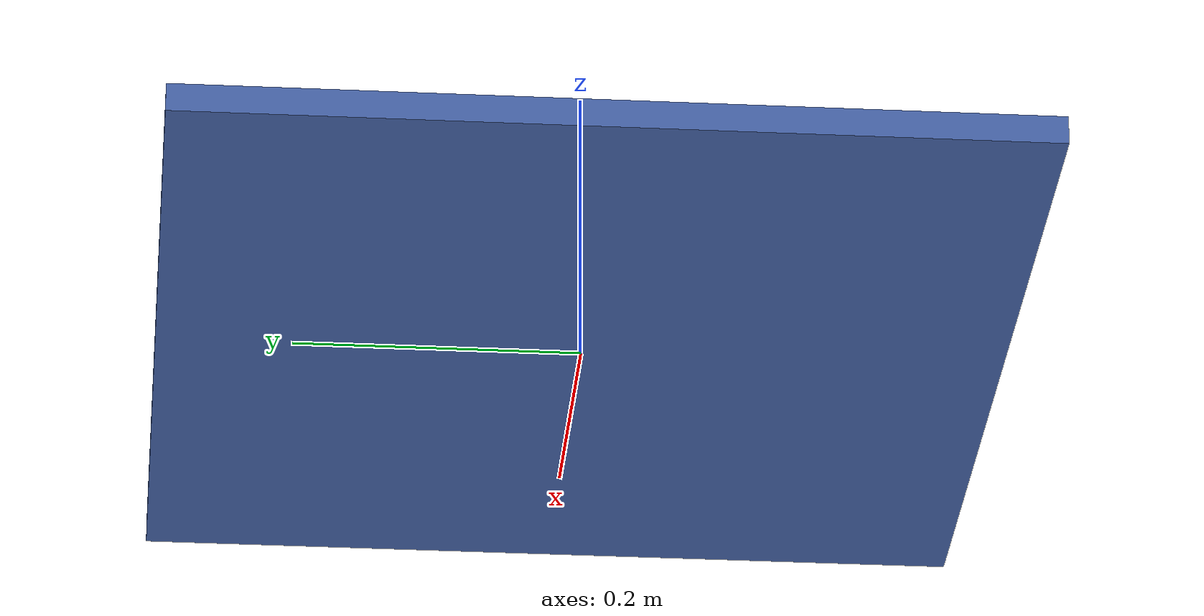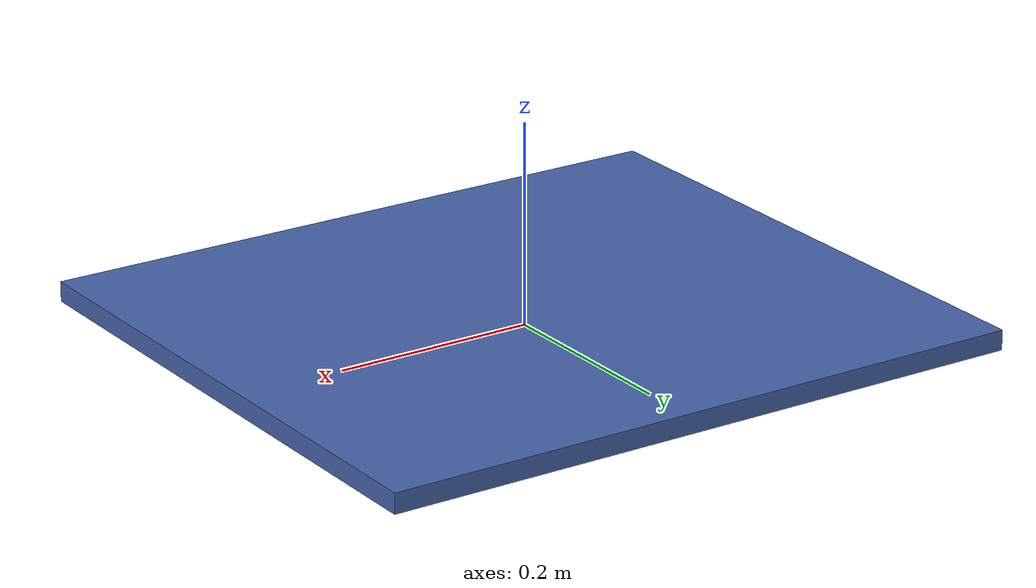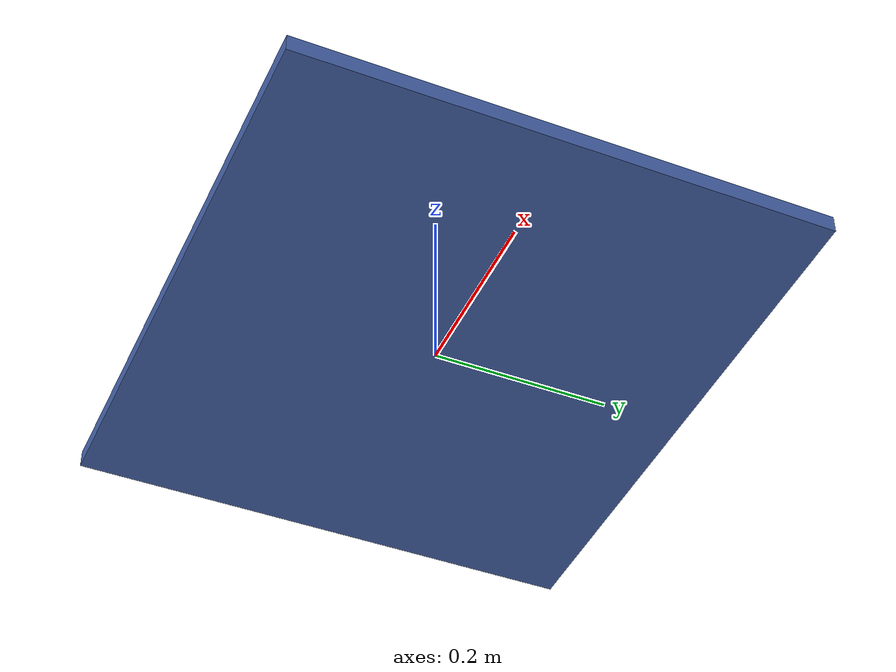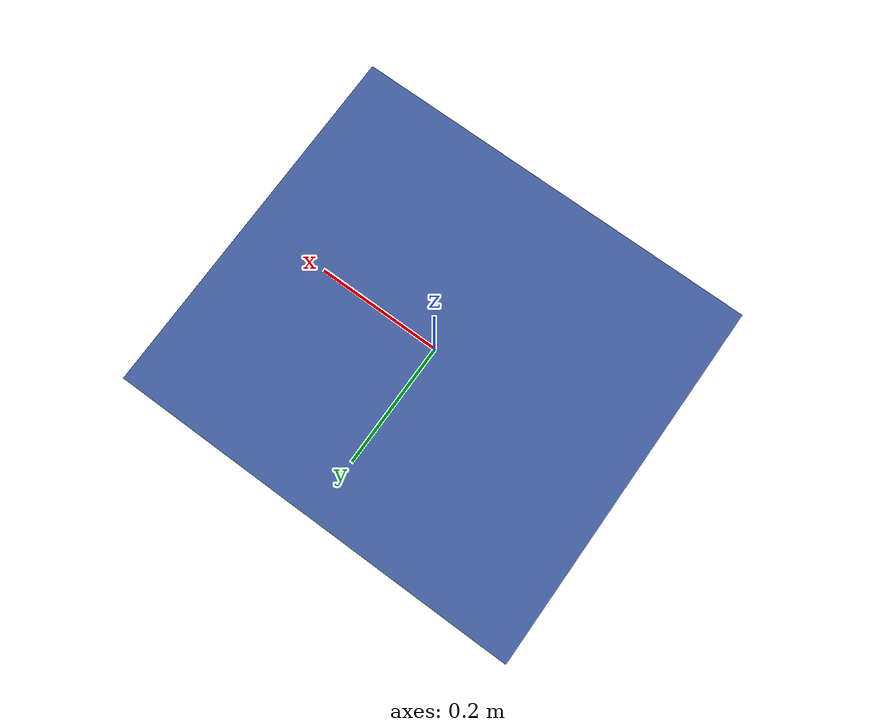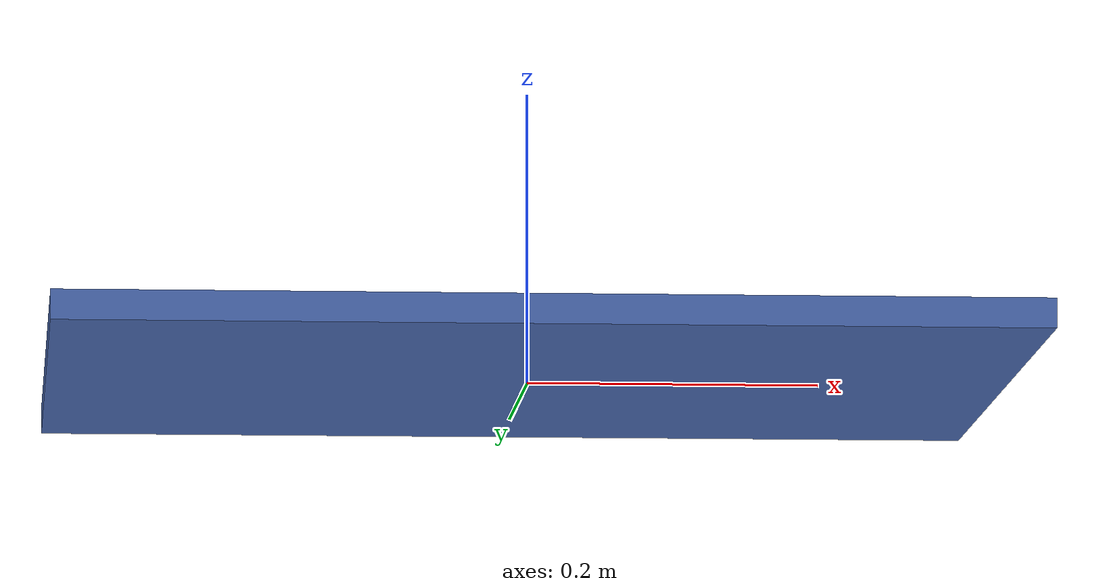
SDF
<?xml version='1.0'?>
<sdf version='1.6'>
  <model name='tabletop'>
    <link name='link'>
      <pose>0.0 0.0 0.01 0 0 0</pose>
      <inertial>
        <!--NOTE: Uses hard wood density (i.e 960 kg/m^3) to calculate the mass
        see https://qtimber.daf.qld.gov.au/guides/wood-density-and-hardness
        -->
        <mass>7.47648</mass>
        <inertia>
          <ixx>0.2162609222</ixx> <!-- for a box: ixx = 0.083 * mass * (y*y + z*z) -->
          <ixy>0</ixy>
          <ixz>0</ixz>
          <iyy>0.2705588582</iyy> <!-- for a box: iyy = 0.083 * mass * (x*x + z*z) -->
          <iyz>0</iyz>
          <izz>0.4863233422</izz> <!-- for a box: izz = 0.083 * mass * (x*x + y*y) -->
        </inertia>
        <pose>0 0 0 0 -0 0</pose>
      </inertial>
      <self_collide>0</self_collide>
      <enable_wind>0</enable_wind>
      <kinematic>0</kinematic>
      <pose>0 0 0 0 -0 0</pose>
      <visual name='visual'>
        <geometry>
          <box>
            <size>0.66 0.59 0.02</size>
          </box>
        </geometry>
        <material>
          <!-- KIT Green RGB: 0 150 130 ->  0 0.588 0.51 1-->
          <!-- KIT Blue RGB: 70 100 170 ->  0.2745 0.3922 0.6667 1-->
          <!-- KIT Grey RGB: 64 64 64 ->  0.251 0.251 0.251 1-->
          <ambient>0.2745 0.3922 0.6667 1</ambient>
          <diffuse>0.2745 0.3922 0.6667 1</diffuse>
          <specular>0 0 0 0</specular>
          <emissive>0 0 0 1</emissive>
        </material>
        <pose>0 0 0 0 -0 0</pose>
        <transparency>0</transparency>
        <cast_shadows>1</cast_shadows>
      </visual>
      <collision name='collision'>
        <laser_retro>0</laser_retro>
        <max_contacts>10</max_contacts>
        <pose>0 0 0 0 -0 0</pose>
        <geometry>
          <box>
            <size>0.66 0.59 0.02</size>
          </box>
        </geometry>
        <surface>
          <!--NOTE: Uses dynamic friction of wood on a brick surface
          see https://www.engineeringtoolbox.com/friction-coefficients-d_778.html
          -->
          <friction>
            <ode>
              <mu>0.6</mu>
              <mu2>0.6</mu2>
              <fdir1>0 0 0</fdir1>
              <slip1>0</slip1>
              <slip2>0</slip2>
            </ode>
            <torsional>
              <coefficient>1</coefficient>
              <patch_radius>0</patch_radius>
              <surface_radius>0</surface_radius>
              <use_patch_radius>1</use_patch_radius>
              <ode>
                <slip>0</slip>
              </ode>
            </torsional>
          </friction>
          <bounce>
            <restitution_coefficient>0</restitution_coefficient>
            <threshold>1e+06</threshold>
          </bounce>
          <contact>
            <collide_without_contact>0</collide_without_contact>
            <collide_without_contact_bitmask>1</collide_without_contact_bitmask>
            <collide_bitmask>1</collide_bitmask>
            <ode>
              <soft_cfm>0</soft_cfm>
              <soft_erp>0.2</soft_erp>
              <kp>1e+13</kp>
              <kd>1</kd>
              <max_vel>0.01</max_vel>
              <min_depth>0</min_depth>
            </ode>
            <bullet>
              <split_impulse>1</split_impulse>
              <split_impulse_penetration_threshold>-0.01</split_impulse_penetration_threshold>
              <soft_cfm>0</soft_cfm>
              <soft_erp>0.2</soft_erp>
              <kp>1e+13</kp>
              <kd>1</kd>
            </bullet>
          </contact>
        </surface>
      </collision>
    </link>
    <static>1</static>
    <allow_auto_disable>1</allow_auto_disable>
  </model>
</sdf>
